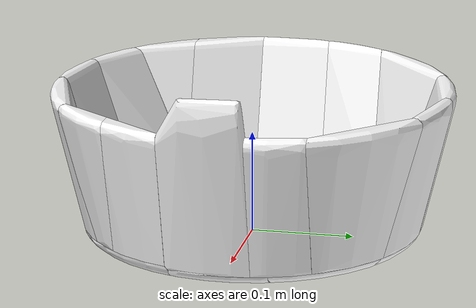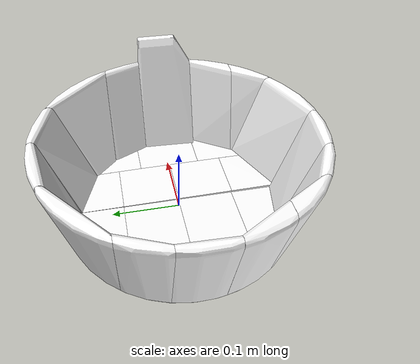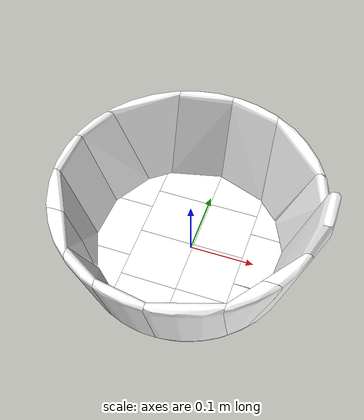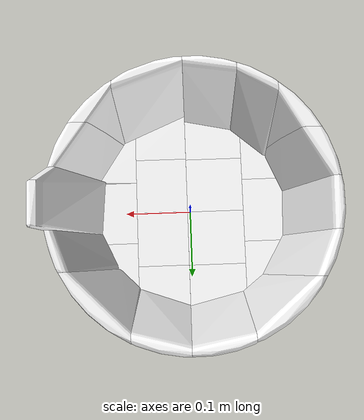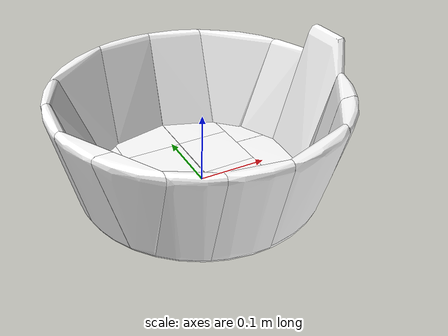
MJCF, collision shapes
<mujoco model="model">
  <compiler angle="radian"/>
  <asset>
    <mesh file="visual/Basket026.obj" name="Basket026_vis"/>
    <texture file="visual/T_Basket026_BC001.png" name="Basket026_material" type="2d"/>
    <material name="Basket026_material" rgba="1 1 1 1.0" texture="Basket026_material" shininess="0.141421377658844" specular="0.3103448502657381"/>
    <mesh file="collision/Basket026_collision_3_0.obj" name="Basket026_collision_3_0"/>
    <mesh file="collision/Basket026_collision_2_0.obj" name="Basket026_collision_2_0"/>
    <mesh file="collision/Basket026_collision_2_1.obj" name="Basket026_collision_2_1"/>
    <mesh file="collision/Basket026_collision_2_2.obj" name="Basket026_collision_2_2"/>
    <mesh file="collision/Basket026_collision_2_3.obj" name="Basket026_collision_2_3"/>
    <mesh file="collision/Basket026_collision_2_4.obj" name="Basket026_collision_2_4"/>
    <mesh file="collision/Basket026_collision_2_5.obj" name="Basket026_collision_2_5"/>
    <mesh file="collision/Basket026_collision_2_6.obj" name="Basket026_collision_2_6"/>
    <mesh file="collision/Basket026_collision_0_0.obj" name="Basket026_collision_0_0"/>
    <mesh file="collision/Basket026_collision_0_1.obj" name="Basket026_collision_0_1"/>
    <mesh file="collision/Basket026_collision_0_2.obj" name="Basket026_collision_0_2"/>
    <mesh file="collision/Basket026_collision_0_3.obj" name="Basket026_collision_0_3"/>
    <mesh file="collision/Basket026_collision_0_4.obj" name="Basket026_collision_0_4"/>
    <mesh file="collision/Basket026_collision_0_5.obj" name="Basket026_collision_0_5"/>
    <mesh file="collision/Basket026_collision_0_6.obj" name="Basket026_collision_0_6"/>
    <mesh file="collision/Basket026_collision_14_0.obj" name="Basket026_collision_14_0"/>
    <mesh file="collision/Basket026_collision_1_0.obj" name="Basket026_collision_1_0"/>
    <mesh file="collision/Basket026_collision_5_0.obj" name="Basket026_collision_5_0"/>
    <mesh file="collision/Basket026_collision_10_0.obj" name="Basket026_collision_10_0"/>
    <mesh file="collision/Basket026_collision_11_0.obj" name="Basket026_collision_11_0"/>
    <mesh file="collision/Basket026_collision_4_0.obj" name="Basket026_collision_4_0"/>
    <mesh file="collision/Basket026_collision_4_1.obj" name="Basket026_collision_4_1"/>
    <mesh file="collision/Basket026_collision_6_0.obj" name="Basket026_collision_6_0"/>
    <mesh file="collision/Basket026_collision_6_1.obj" name="Basket026_collision_6_1"/>
    <mesh file="collision/Basket026_collision_13_0.obj" name="Basket026_collision_13_0"/>
    <mesh file="collision/Basket026_collision_12_0.obj" name="Basket026_collision_12_0"/>
    <mesh file="collision/Basket026_collision_7_0.obj" name="Basket026_collision_7_0"/>
    <mesh file="collision/Basket026_collision_9_0.obj" name="Basket026_collision_9_0"/>
    <mesh file="collision/Basket026_collision_8_0.obj" name="Basket026_collision_8_0"/>
  </asset>
  <default>
    <default class="visual">
      <geom conaffinity="0" contype="0" group="1" type="mesh" density="100"/>
    </default>
    <default class="collision">
      <geom group="0" rgba="1 1 1 0.25" density="100" solimp="0.95 0.98 0.001" solref="0.004 1"/>
    </default>
    <default class="region">
      <geom group="1" conaffinity="0" contype="0" rgba="0 1 0 0"/>
    </default>
  </default>
  <worldbody>
    <body>
      <body name="object">
        <geom mesh="Basket026_vis" type="mesh" class="visual" material="Basket026_material"/>
        <geom class="collision" type="mesh" mesh="Basket026_collision_3_0"/>
        <geom class="collision" type="mesh" mesh="Basket026_collision_2_0"/>
        <geom class="collision" type="mesh" mesh="Basket026_collision_2_1"/>
        <geom class="collision" type="mesh" mesh="Basket026_collision_2_2"/>
        <geom class="collision" type="mesh" mesh="Basket026_collision_2_3"/>
        <geom class="collision" type="mesh" mesh="Basket026_collision_2_4"/>
        <geom class="collision" type="mesh" mesh="Basket026_collision_2_5"/>
        <geom class="collision" type="mesh" mesh="Basket026_collision_2_6"/>
        <geom class="collision" type="mesh" mesh="Basket026_collision_0_0"/>
        <geom class="collision" type="mesh" mesh="Basket026_collision_0_1"/>
        <geom class="collision" type="mesh" mesh="Basket026_collision_0_2"/>
        <geom class="collision" type="mesh" mesh="Basket026_collision_0_3"/>
        <geom class="collision" type="mesh" mesh="Basket026_collision_0_4"/>
        <geom class="collision" type="mesh" mesh="Basket026_collision_0_5"/>
        <geom class="collision" type="mesh" mesh="Basket026_collision_0_6"/>
        <geom class="collision" type="mesh" mesh="Basket026_collision_14_0"/>
        <geom class="collision" type="mesh" mesh="Basket026_collision_1_0"/>
        <geom class="collision" type="mesh" mesh="Basket026_collision_5_0"/>
        <geom class="collision" type="mesh" mesh="Basket026_collision_10_0"/>
        <geom class="collision" type="mesh" mesh="Basket026_collision_11_0"/>
        <geom class="collision" type="mesh" mesh="Basket026_collision_4_0"/>
        <geom class="collision" type="mesh" mesh="Basket026_collision_4_1"/>
        <geom class="collision" type="mesh" mesh="Basket026_collision_6_0"/>
        <geom class="collision" type="mesh" mesh="Basket026_collision_6_1"/>
        <geom class="collision" type="mesh" mesh="Basket026_collision_13_0"/>
        <geom class="collision" type="mesh" mesh="Basket026_collision_12_0"/>
        <geom class="collision" type="mesh" mesh="Basket026_collision_7_0"/>
        <geom class="collision" type="mesh" mesh="Basket026_collision_9_0"/>
        <geom class="collision" type="mesh" mesh="Basket026_collision_8_0"/>
        <geom class="region" name="reg_bbox" type="box" pos="0.0001805000000000001 -8.550000000000224e-05 0.09193348" size="0.1999255 0.1954365 0.09411251999999999"/>
      </body>
    </body>
  </worldbody>
</mujoco>
